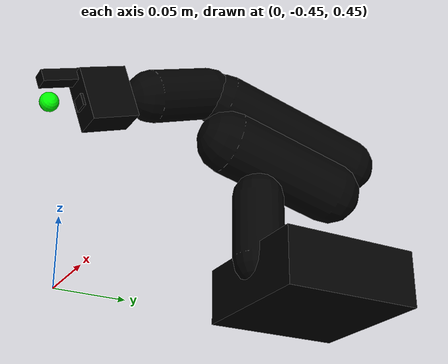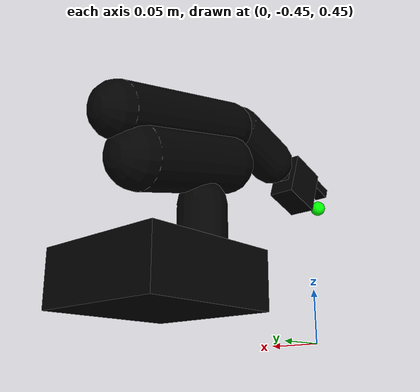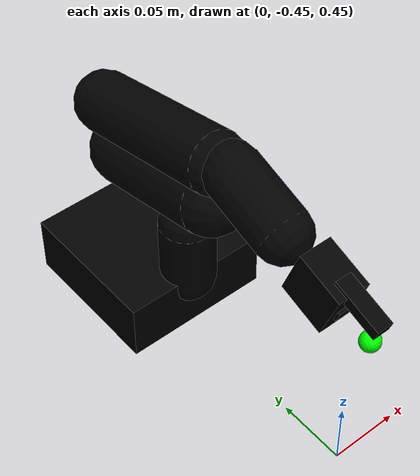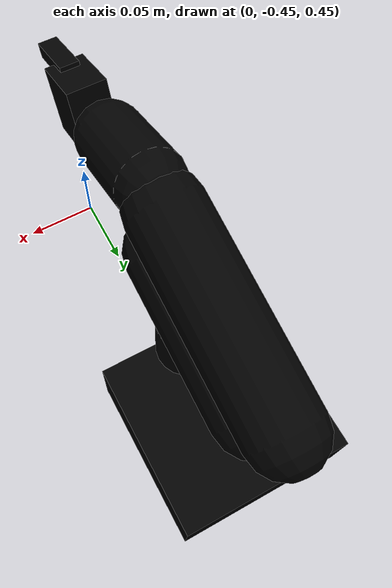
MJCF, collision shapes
<?xml version="1.0" encoding="utf-8"?>
<mujoco model="so_arm100">

  <compiler angle="radian" meshdir="assets" autolimits="true"/>

  <option
    timestep   = "0.001"
    gravity    = "0 0 -9.81"
    integrator = "implicitfast"
    cone       = "elliptic"
    impratio   = "10"
    iterations = "120"
    noslip_iterations = "3"/>

  <default>

    <default class="arm_joint">
      <!-- NO limited="true" here — each joint sets its own range -->
      <joint type="hinge" damping="0.5" frictionloss="0.1" armature="0.01"/>
    </default>

    <!-- Visual mesh geoms — rendering only, zero collision -->
    <default class="visual">
      <geom contype="0" conaffinity="0" group="1" mass="0"/>
    </default>

    <!-- Collision proxy geoms — invisible capsules/boxes -->
    <default class="collision">
      <geom contype="1" conaffinity="1"
            condim="6"
          margin="0.0015"
            friction="0.8 0.02 0.01"
          solref="0.0012 1"
          solimp="0.99 0.999 0.001 0.5 2"
            rgba="0 0 0 0"/>
    </default>

    <!-- Gripper finger proxies — higher friction for grasping -->
    <default class="gripper_col">
      <geom contype="1" conaffinity="1"
            condim="6"
          margin="0.00010"
            friction="1.8 0.02 0.005"
            solref="0.0007 1"
          solimp="0.99 0.999 0.001 0.5 2"
            rgba="0 0 0 0"/>
    </default>

    <default class="arm_act">
      <position kp="80" kv="8" ctrllimited="true" forcelimited="true" forcerange="-8 8"/>
    </default>

  </default>

  <!-- ── Assets ────────────────────────────────────────────────────── -->
  <asset>
    <mesh name="Base"                   file="Base.stl"/>
    <mesh name="Base_Motor"             file="Base_Motor.stl"/>
    <mesh name="Rotation_Pitch"         file="Rotation_Pitch.stl"/>
    <mesh name="Rotation_Pitch_Motor"   file="Rotation_Pitch_Motor.stl"/>
    <mesh name="Upper_Arm"              file="Upper_Arm.stl"/>
    <mesh name="Upper_Arm_Motor"        file="Upper_Arm_Motor.stl"/>
    <mesh name="Lower_Arm"              file="Lower_Arm.stl"/>
    <mesh name="Lower_Arm_Motor"        file="Lower_Arm_Motor.stl"/>
    <mesh name="Wrist_Pitch_Roll"       file="Wrist_Pitch_Roll.stl"/>
    <mesh name="Wrist_Pitch_Roll_Motor" file="Wrist_Pitch_Roll_Motor.stl"/>
    <mesh name="Fixed_Jaw"              file="Fixed_Jaw.stl"/>
    <mesh name="Fixed_Jaw_Motor"        file="Fixed_Jaw_Motor.stl"/>
    <mesh name="Moving_Jaw"             file="Moving_Jaw.stl"/>

    <material name="3d_printed" rgba="1.0 0.82 0.12 1.0"/>
    <material name="sts3215"    rgba="0.1 0.1  0.1  1.0"/>
  </asset>

  <worldbody>

    <!-- ── Base: fixed to table, no joint ── -->
    <body name="base" pos="0 -0.25 0.472">
      <inertial mass="0.5" pos="0 0 0.02" diaginertia="0.002 0.002 0.002"/>
      <geom class="visual"    type="mesh" mesh="Base"       material="3d_printed"/>
      <geom class="visual"    type="mesh" mesh="Base_Motor" material="sts3215"/>
      <geom class="collision" type="box"  size="0.055 0.055 0.022" pos="0 0 0.011"/>

      <!-- ── Joint 1: shoulder_pan — yaw around world Z ──
           Body frame is rotated +90° around X by the euler below,
           so local Y → world Z. axis="0 1 0" in local = world Z = yaw. ✓ -->
      <body name="shoulder" pos="0 -0.0452 0.0165" euler="1.5708 0 0">
        <inertial mass="0.119" pos="0 0.059 0.031"
                  diaginertia="5.9e-05 5.9e-05 3.1e-05"/>
        <joint name="shoulder_pan" class="arm_joint"
               axis="0 1 0" range="-2.0 2.0"/>
        <geom class="visual"    type="mesh" mesh="Rotation_Pitch"       material="3d_printed"/>
        <geom class="visual"    type="mesh" mesh="Rotation_Pitch_Motor" material="sts3215"/>
          <geom class="collision" type="capsule" size="0.020"
            fromto="0 0.010 0  0 0.060 0"/>

        <!-- ── Joint 2: shoulder_lift ── -->
        <body name="upper_arm" pos="0 0.1025 0.0306" euler="-1.8 0 0">
          <inertial mass="0.162" pos="0 0.070 0.003"
                    diaginertia="2.1e-04 1.7e-04 7.0e-05"/>
          <joint name="shoulder_lift" class="arm_joint"
                 axis="1 0 0" range="0.0 3.5"/>
          <geom class="visual"    type="mesh" mesh="Upper_Arm"       material="3d_printed"/>
          <geom class="visual"    type="mesh" mesh="Upper_Arm_Motor" material="sts3215"/>
          <geom class="collision" type="capsule" size="0.025"
                fromto="0 0.005 0  0 0.100 0"/>

          <!-- ── Joint 3: elbow_flex ── -->
          <body name="lower_arm" pos="0 0.11257 0.028" euler="1.5708 0 0">
            <inertial mass="0.148" pos="0 0.001 0.077"
                      diaginertia="1.4e-04 1.1e-04 4.8e-05"/>
            <joint name="elbow_flex" class="arm_joint"
                   axis="1 0 0" range="-3.14158 0.0"/>
            <geom class="visual"    type="mesh" mesh="Lower_Arm"       material="3d_printed"/>
            <geom class="visual"    type="mesh" mesh="Lower_Arm_Motor" material="sts3215"/>
            <geom class="collision" type="capsule" size="0.022"
                  fromto="0 0.005 0  0 0.005 0.120"/>

            <!-- ── Joint 4: wrist_flex ── -->
            <body name="wrist" pos="0 0.0052 0.1349" euler="-1.0 0 0">
              <inertial mass="0.066" pos="-0.009 -0.035 0"
                        diaginertia="3.5e-05 2.4e-05 1.9e-05"/>
              <joint name="wrist_flex" class="arm_joint"
                     axis="1 0 0" range="-2.5 1.2"
                     damping="0.3" frictionloss="0.05"/>
              <geom class="visual"    type="mesh" mesh="Wrist_Pitch_Roll"       material="3d_printed"/>
              <geom class="visual"    type="mesh" mesh="Wrist_Pitch_Roll_Motor" material="sts3215"/>
              <geom class="collision" type="capsule" size="0.020"
                    fromto="0 0 0  0 -0.050 0"/>

              <!-- ── Joint 5: wrist_roll ── -->
              <body name="gripper_body" pos="0 -0.0601 0" euler="0 1.5708 0">
                <inertial mass="0.093" pos="0.006 -0.028 0"
                          diaginertia="5.0e-05 4.6e-05 2.7e-05"/>
                <joint name="wrist_roll" class="arm_joint"
                       axis="0 1 0" range="-3.14158 3.14158"
                       damping="0.3" frictionloss="0.05"/>
                <geom class="visual"   type="mesh" mesh="Fixed_Jaw"       material="3d_printed"/>
                <geom class="visual"   type="mesh" mesh="Fixed_Jaw_Motor" material="sts3215"/>
                <!-- Palm collision box -->
                <geom class="gripper_col" type="box"
                      size="0.020 0.018 0.012" pos="0 -0.030 0"/>
                    <!-- Fixed finger pad collision (tuned to visual jaw thickness) -->
                                <geom name="fixed_finger_col" class="gripper_col" type="box"
                                  size="0.0045 0.019 0.006" pos="0.002 -0.031 0"/>

                <!-- End-effector site (between fingers at tip) -->
                <site name="ee_site" pos="0 -0.072 0" size="0.007" rgba="0 1 0 1"/>
                    <!-- Grasp center used by IK to align jaw center with the block -->
                    <site name="grasp_center" pos="0 -0.045 0" size="0.004" rgba="0 1 1 1"/>
                    <!-- Fixed finger touch site -->
                    <site name="finger_tip_l" pos="0.002 -0.045 0" size="0.004" rgba="1 0 0 1"/>

                <!-- ── Joint 6: gripper jaw ── -->
                <body name="jaw" pos="-0.0202 -0.0244 0" euler="0 3.14158 0">
                  <inertial mass="0.020" pos="-0.002 -0.030 0"
                            diaginertia="1.1e-05 9.0e-06 3.0e-06"/>
                  <joint name="gripper_jaw" class="arm_joint"
                         axis="0 0 1" range="-0.2 2.0"
                         damping="0.2" frictionloss="0.05"/>
                  <geom class="visual"      type="mesh" mesh="Moving_Jaw" material="3d_printed"/>
                  <!-- Moving finger pad collision (mirrors fixed jaw pad) -->
                  <geom name="moving_finger_col" class="gripper_col" type="box"
                    size="0.0045 0.019 0.006" pos="-0.002 -0.031 0"/>
                  <!-- Moving finger touch site -->
                  <site name="finger_tip_r" pos="-0.002 -0.045 0" size="0.004" rgba="0 0 1 1"/>
                </body>

              </body>
            </body>
          </body>
        </body>
      </body>
    </body>

  </worldbody>

  <!-- ── Actuators ──────────────────────────────────────────────────── -->
  <actuator>
    <position name="shoulder_pan"  joint="shoulder_pan"  class="arm_act" ctrlrange="-2.0 2.0"/>
    <position name="shoulder_lift" joint="shoulder_lift" class="arm_act" ctrlrange="0.0 3.5"/>
    <position name="elbow_flex"    joint="elbow_flex"    class="arm_act" ctrlrange="-3.14158 0.0"/>
    <position name="wrist_flex"    joint="wrist_flex"    class="arm_act" kp="40" kv="5" ctrlrange="-2.5 1.2"/>
    <position name="wrist_roll"    joint="wrist_roll"    class="arm_act" kp="40" kv="5" ctrlrange="-3.14158 3.14158"/>
    <position name="gripper_jaw"   joint="gripper_jaw"   class="arm_act" kp="35" kv="10" forcerange="-6 6" ctrlrange="-0.2 2.0"/>
  </actuator>

  <!-- ── Sensors ────────────────────────────────────────────────────── -->
  <sensor>
    <jointpos name="qpos_shoulder_pan"  joint="shoulder_pan"/>
    <jointpos name="qpos_shoulder_lift" joint="shoulder_lift"/>
    <jointpos name="qpos_elbow_flex"    joint="elbow_flex"/>
    <jointpos name="qpos_wrist_flex"    joint="wrist_flex"/>
    <jointpos name="qpos_wrist_roll"    joint="wrist_roll"/>
    <jointpos name="qpos_gripper"       joint="gripper_jaw"/>

    <jointvel name="qvel_shoulder_pan"  joint="shoulder_pan"/>
    <jointvel name="qvel_shoulder_lift" joint="shoulder_lift"/>
    <jointvel name="qvel_elbow_flex"    joint="elbow_flex"/>
    <jointvel name="qvel_wrist_flex"    joint="wrist_flex"/>
    <jointvel name="qvel_wrist_roll"    joint="wrist_roll"/>
    <jointvel name="qvel_gripper"       joint="gripper_jaw"/>

    <actuatorfrc name="frc_shoulder_pan"  actuator="shoulder_pan"/>
    <actuatorfrc name="frc_shoulder_lift" actuator="shoulder_lift"/>
    <actuatorfrc name="frc_elbow_flex"    actuator="elbow_flex"/>
    <actuatorfrc name="frc_wrist_flex"    actuator="wrist_flex"/>
    <actuatorfrc name="frc_wrist_roll"    actuator="wrist_roll"/>
    <actuatorfrc name="frc_gripper"       actuator="gripper_jaw"/>

    <framepos  name="ee_pos"  objtype="site" objname="ee_site"/>
    <framequat name="ee_quat" objtype="site" objname="ee_site"/>

    <touch name="touch_finger_l" site="finger_tip_l"/>
    <touch name="touch_finger_r" site="finger_tip_r"/>
  </sensor>

</mujoco>
